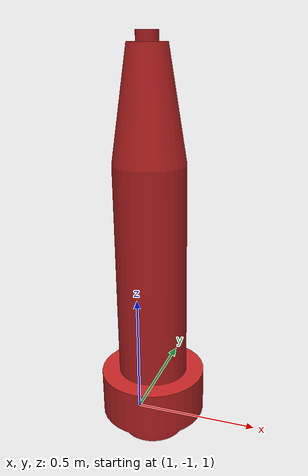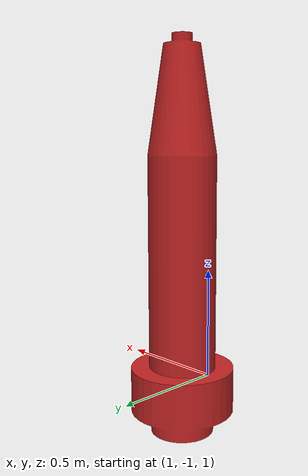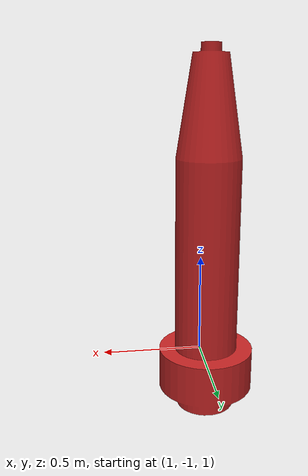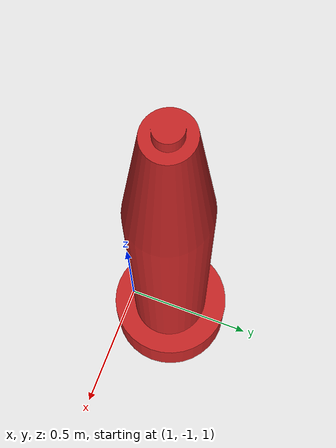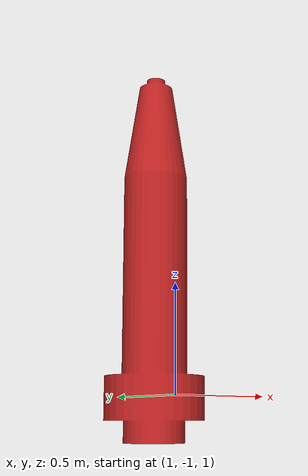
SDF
<?xml version="1.0" ?>
<sdf version="1.6">
  <model name="surmark950410">
    <link name="buoyl">
      <pose>0 0 0 0 0 0</pose>
      <velocity_decay>
        <linear>0.001</linear>
        <angular>0.001</angular>
      </velocity_decay>
      <inertial>
        <pose>0 0 -10 0 0 0</pose>
        <mass>10</mass>
        <inertia>
          <ixx>10</ixx>
          <ixy>0</ixy>
          <ixz>0</ixz>
          <iyy>10</iyy>
          <iyz>0</iyz>
          <izz>10</izz>
        </inertia>
      </inertial>
      <collision name="buoyc">
        <geometry>
          <cylinder>
            <radius>0.25</radius>
            <length>1.0</length>
          </cylinder>
        </geometry>
      </collision>
      <visual name="buoyv">
        <geometry>
	<mesh><uri>filename="package://robotx_gazebo/models/surmark950410/mesh/surmark950410.dae"</uri></mesh>
        </geometry>
        <material>
          <script>
            <uri>file://media/materials/scripts/gazebo.material</uri>
            <name>Gazebo/Red</name>
          </script>
        </material>
      </visual>
    </link>
    <plugin name="BuoyancyPlugin" filename="libbuoyancy_gazebo_plugin.so">
      <fluid_density>1000</fluid_density>
      <fluid_level>0.0</fluid_level>
      <fluid_drag>10</fluid_drag>
      <link>
        <name>buoyl</name>
        <center_of_volume>0 0 0.5</center_of_volume>
        <area>0.1</area>
        <height>1</height>
      </link>
    </plugin>
  </model>
</sdf>
